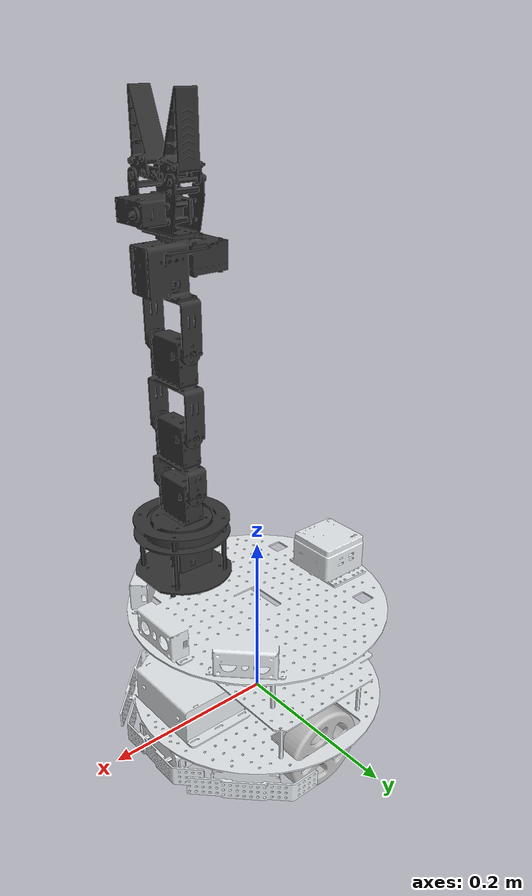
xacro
<?xml version="1.0"?>

<robot name="w2" xmlns:xacro="http://www.ros.org/wiki/xacro">

    <xacro:include filename="$(find upros_description)/xacro/w2_body.xacro" />
    <xacro:include filename="$(find upros_description)/xacro/single_arm.xacro" />
    <xacro:include filename="$(find upros_description)/xacro/diff_drive_controller.xacro" />

    <xacro:w2_body />
    <xacro:single_arm />
    <xacro:differential_drive_controller />

	<!-- 使用宏添加机械臂关节控制器 -->
	<xacro:transmission_block joint_name="joint_1"/>
	<xacro:transmission_block joint_name="joint_2"/>
	<xacro:transmission_block joint_name="joint_3"/>
	<xacro:transmission_block joint_name="joint_4"/>
	<xacro:transmission_block joint_name="joint_5"/>
	<xacro:transmission_block joint_name="claw_joint_1"/>
	<xacro:transmission_block joint_name="claw_joint_2"/>

</robot>

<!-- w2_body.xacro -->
<robot xmlns:xacro="http://www.ros.org/wiki/xacro" name="w2_body">

    <xacro:macro name="w2_body">

        <link name="base_footprint">
        </link>

        <link name="base_link">
            <inertial>
                <origin xyz="-0.00183994912012901 0.000718384784481402 0.040896257051146"
                    rpy="0 0 0" />
                <mass value="2.11446326748896" />
                <inertia ixx="0.0172522550977486" ixy="0.000112962512291742"
                    ixz="0.00215471233797688"
                    iyy="0.0214703513066925" iyz="-3.60344762320202E-05" izz="0.0232865128652866" />
            </inertial>
            <visual>
                <origin xyz="0 0 0" rpy="0 0 0" />
                <geometry>
                    <mesh filename="package://upros_description/meshes/W2C/base_link.STL" />
                </geometry>
                <material name="">
                    <color rgba="0.898039215686275 0.917647058823529 0.929411764705882 1" />
                </material>
            </visual>
            <collision>
                <origin xyz="0 0 0" rpy="0 0 0" />
                <geometry>
                    <mesh filename="package://upros_description/meshes/W2C/base_link.STL" />
                </geometry>
            </collision>
        </link>
        <joint name="base_footprint_joint" type="fixed">
            <parent link="base_footprint" />
            <child link="base_link" />
        </joint>

        <link name="wheel_L_link">
            <inertial>
                <origin xyz="-3.78770996320736E-07 -0.013414250594195 4.81266645289274E-07"
                    rpy="0 0 0" />
                <mass value="0.337836569375269" />
                <inertia ixx="0.000278270805900081" ixy="1.29138084160578E-09"
                    ixz="1.09699819030228E-09" iyy="0.000496405737651082"
                    iyz="-1.64156177606385E-09"
                    izz="0.000278271727426874" />
            </inertial>
            <visual>
                <origin xyz="0 0 0" rpy="0 0 0" />
                <geometry>
                    <mesh filename="package://upros_description/meshes/W2C/wheel_L_link.STL" />
                </geometry>
                <material name="">
                    <color rgba="0.752941176470588 0.752941176470588 0.752941176470588 1" />
                </material>
            </visual>
            <collision>
                <origin xyz="0 0 0" rpy="0 0 0" />
                <geometry>
                    <mesh filename="package://upros_description/meshes/W2C/wheel_L_link.STL" />
                </geometry>
            </collision>
        </link>
        <joint name="wheel_L_joint" type="continuous">
            <origin xyz="0 0.1215 -0.02" rpy="0 0 0" />
            <parent link="base_link" />
            <child link="wheel_L_link" />
            <axis xyz="0 1 0" />
        </joint>

        <link name="wheel_R_link">
            <inertial>
                <origin xyz="-5.54575135339762E-07 0.013414250594195 2.59868179624395E-07"
                    rpy="0 0 0" />
                <mass value="0.337836569375269" />
                <inertia ixx="0.000278271195902002" ixy="-1.89148049635397E-09"
                    ixz="1.18772924132671E-09" iyy="0.000496405737651082" iyz="8.85827903470683E-10"
                    izz="0.000278271337424954" />
            </inertial>
            <visual>
                <origin xyz="0 0 0" rpy="0 0 0" />
                <geometry>
                    <mesh filename="package://upros_description/meshes/W2C/wheel_R_link.STL" />
                </geometry>
                <material name="">
                    <color rgba="0.752941176470588 0.752941176470588 0.752941176470588 1" />
                </material>
            </visual>
            <collision>
                <origin xyz="0 0 0" rpy="0 0 0" />
                <geometry>
                    <mesh filename="package://upros_description/meshes/W2C/wheel_R_link.STL" />
                </geometry>
            </collision>
        </link>
        <joint name="wheel_R_joint" type="continuous">
            <origin xyz="0 -0.1215 -0.02" rpy="0 0 0" />
            <parent link="base_link" />
            <child link="wheel_R_link" />
            <axis xyz="0 1 0" />
        </joint>

        <link name="front_Link">
            <inertial>
                <origin xyz="0 0 0" rpy="0 0 0" />
                <mass value="0.0063074121665526" />
                <inertia ixx="3.34755925557046E-07" ixy="-1.45392467961487E-22"
                    ixz="2.42001994301979E-24" iyy="4.93530086138426E-07" iyz="6.44209161389679E-25"
                    izz="3.34755925557046E-07" />
            </inertial>
            <visual>
                <origin xyz="0 0 0" rpy="0 0 0" />
                <geometry>
                    <mesh filename="package://upros_description/meshes/W2C/wheel_B_Link.STL" />
                </geometry>
                <material name="">
                    <color rgba="0.752941176470588 1 1 1" />
                </material>
            </visual>
            <collision>
                <origin xyz="0 0 0" rpy="0 0 0" />
                <geometry>
                    <mesh filename="package://upros_description/meshes/W2C/wheel_B_Link.STL" />
                </geometry>
            </collision>
        </link>
        <joint name="front_joint" type="continuous">
            <origin xyz="0.0859999999999999 0 -0.0575" rpy="0 0 0" />
            <parent link="base_link" />
            <child link="front_Link" />
            <axis xyz="1 1 1" />
        </joint>

        <link name="back_Link">
            <inertial>
                <origin xyz="0 0 0" rpy="0 0 0" />
                <mass value="0.0063074121665526" />
                <inertia ixx="3.34755925557046E-07" ixy="-1.45392467961487E-22"
                    ixz="2.42001994301979E-24" iyy="4.93530086138426E-07" iyz="6.4420916138968E-25"
                    izz="3.34755925557046E-07" />
            </inertial>
            <visual>
                <origin xyz="0 0 0" rpy="0 0 0" />
                <geometry>
                    <mesh filename="package://upros_description/meshes/W2C/wheel_A_Link.STL" />
                </geometry>
                <material name="">
                    <color rgba="0.752941176470588 1 1 1" />
                </material>
            </visual>
            <collision>
                <origin xyz="0 0 0" rpy="0 0 0" />
                <geometry>
                    <mesh filename="package://upros_description/meshes/W2C/wheel_A_Link.STL" />
                </geometry>
            </collision>
        </link>
        <joint name="back_joint" type="continuous">
            <origin xyz="-0.0859999999999998 0 -0.0575" rpy="0 0 0" />
            <parent link="base_link" />
            <child link="back_Link" />
            <axis xyz="1 1 1" />
        </joint>

    </xacro:macro>

</robot>

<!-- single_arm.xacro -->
<robot xmlns:xacro="http://www.ros.org/wiki/xacro" name="single_arm">

  <!--定义机械臂的宏-->
  <xacro:macro name="single_arm">

    <link name="arm_base_link">
      <inertial>
        <origin xyz="-1.7947E-07 -0.0018392 0.042093" rpy="0 0 0" />
        <mass value="0.01029" />
        <inertia ixx="0.00016721" ixy="-1.4903E-10" ixz="-3.0653E-10" iyy="0.00016551"
          iyz="-2.4534E-06" izz="0.0001699" />
      </inertial>
      <visual>
        <origin xyz="0 0 0" rpy="0 0 0" />
        <geometry>
          <mesh filename="package://upros_description/meshes/arm/arm_base_link.STL" />
        </geometry>
        <material name="">
          <color rgba="0.2 0.2 0.2 1" />
        </material>
      </visual>
      <collision>
        <origin xyz="0 0 0" rpy="0 0 0" />
        <geometry>
          <mesh filename="package://upros_description/meshes/arm/arm_base_link.STL" />
        </geometry>
      </collision>
    </link>
    <joint name="arm_joint" type="fixed">
      <origin xyz="0.10 0.0 0.20" rpy="0 0 -1.57" />
      <parent link="base_link" />
      <child link="arm_base_link" />
      <axis xyz="0 0 0" />
    </joint>
    <gazebo reference="arm_base_link">
      <material>Gazebo/Gray</material>
    </gazebo>

    <link name="link_1">
      <inertial>
        <origin xyz="0.00015999 -3.7029E-07 0.0067201" rpy="0 0 0" />
        <mass value="0.018148" />
        <inertia ixx="3.0609E-05" ixy="-5.9099E-11" ixz="-1.3841E-07" iyy="3.6584E-05"
          iyz="4.9301E-10" izz="2.3547E-05" />
      </inertial>
      <visual>
        <origin xyz="0 0 0" rpy="0 0 0" />
        <geometry>
          <mesh filename="package://upros_description/meshes/arm/link_1.STL" />
        </geometry>
        <material name="">
          <color rgba="0.2 0.2 0.2 1" />
        </material>
      </visual>
      <collision>
        <origin xyz="0 0 0" rpy="0 0 0" />
        <geometry>
          <mesh filename="package://upros_description/meshes/arm/link_1.STL" />
        </geometry>
      </collision>
    </link>
    <joint name="joint_1" type="revolute">
      <origin xyz="0 0 0.072247" rpy="0 0 0" />
      <parent link="arm_base_link" />
      <child link="link_1" />
      <axis xyz="0 0 1" />
      <limit lower="-1.8" upper="1.8" effort="50" velocity="2" />
    </joint>
    <gazebo reference="link_1">
      <material>Gazebo/Gray</material>
    </gazebo>

    <link name="link_2">
      <inertial>
        <origin xyz="0.028477 -5.0821E-07 0.038913" rpy="0 0 0" />
        <mass value="0.019654" />
        <inertia ixx="1.8351E-05" ixy="-6.0792E-11" ixz="-6.4071E-08" iyy="3.1671E-05"
          iyz="3.6197E-10" izz="1.6517E-05" />
      </inertial>
      <visual>
        <origin xyz="0 0 0" rpy="0 0 0" />
        <geometry>
          <mesh filename="package://upros_description/meshes/arm/link_2.STL" />
        </geometry>
        <material name="">
          <color rgba="0.2 0.2 0.2 1" />
        </material>
      </visual>
      <collision>
        <origin xyz="0 0 0" rpy="0 0 0" />
        <geometry>
          <mesh filename="package://upros_description/meshes/arm/link_2.STL" />
        </geometry>
      </collision>
    </link>
    <joint name="joint_2" type="revolute">
      <origin xyz="-0.028151 0 0.034" rpy="0 0 0" />
      <parent link="link_1" />
      <child link="link_2" />
      <axis xyz="1 0 0" />
      <limit lower="-1.8" upper="1.8" effort="50" velocity="3" />
    </joint>
    <gazebo reference="link_2">
      <material>Gazebo/Gray</material>
    </gazebo>

    <link name="link_3">
      <inertial>
        <origin xyz="0.028363 -4.679E-07 0.054247" rpy="0 0 0" />
        <mass value="0.013931" />
        <inertia ixx="3.1912E-05" ixy="-6.0429E-11" ixz="-9.8626E-08" iyy="4.873E-05"
          iyz="4.797E-10" izz="2.0341E-05" />
      </inertial>
      <visual>
        <origin xyz="0 0 0" rpy="0 0 0" />
        <geometry>
          <mesh filename="package://upros_description/meshes/arm/link_3.STL" />
        </geometry>
        <material name="">
          <color rgba="0.2 0.2 0.2 1" />
        </material>
      </visual>
      <collision>
        <origin xyz="0 0 0" rpy="0 0 0" />
        <geometry>
          <mesh filename="package://upros_description/meshes/arm/link_3.STL" />
        </geometry>
      </collision>
    </link>
    <joint name="joint_3" type="revolute">
      <origin xyz="9.8516E-05 0 0.061" rpy="0 0 0" />
      <parent link="link_2" />
      <child link="link_3" />
      <axis xyz="1 0 0" />
      <limit lower="-1.8" upper="1.8" effort="50" velocity="3" />
    </joint>
    <gazebo reference="link_3">
      <material>Gazebo/Gray</material>
    </gazebo>

    <link name="link_4">
      <inertial>
        <origin xyz="0.028255 -0.0047504 0.06611" rpy="0 0 0" />
        <mass value="0.01537" />
        <inertia ixx="9.6221E-05" ixy="-3.6252E-10" ixz="2.7529E-08" iyy="7.3811E-05"
          iyz="7.9136E-06" izz="6.9537E-05" />
      </inertial>
      <visual>
        <origin xyz="0 0 0" rpy="0 0 0" />
        <geometry>
          <mesh filename="package://upros_description/meshes/arm/link_4.STL" />
        </geometry>
        <material name="">
          <color rgba="0.2 0.2 0.2 1" />
        </material>
      </visual>
      <collision>
        <origin xyz="0 0 0" rpy="0 0 0" />
        <geometry>
          <mesh filename="package://upros_description/meshes/arm/link_4.STL" />
        </geometry>
      </collision>
    </link>
    <joint name="joint_4" type="revolute">
      <origin xyz="0 0 0.081" rpy="0 0 0" />
      <parent link="link_3" />
      <child link="link_4" />
      <axis xyz="1 0 0" />
      <limit lower="-1.8" upper="1.8" effort="50" velocity="3" />
    </joint>
    <gazebo reference="link_4">
      <material>Gazebo/Gray</material>
    </gazebo>

    <link name="link_5">
      <inertial>
        <origin xyz="4.4212E-05 0.0041269 0.025698" rpy="0 0 0" />
        <mass value="0.018063" />
        <inertia ixx="3.7917E-05" ixy="1.4713E-07" ixz="-1.1994E-07" iyy="5.5952E-05"
          iyz="2.3438E-06" izz="5.2518E-05" />
      </inertial>
      <visual>
        <origin xyz="0 0 0" rpy="0 0 0" />
        <geometry>
          <mesh filename="package://upros_description/meshes/arm/link_5.STL" />
        </geometry>
        <material name="">
          <color rgba="0.2 0.2 0.2 1" />
        </material>
      </visual>
      <collision>
        <origin xyz="0 0 0" rpy="0 0 0" />
        <geometry>
          <mesh filename="package://upros_description/meshes/arm/link_5.STL" />
        </geometry>
      </collision>
    </link>
    <joint name="joint_5" type="revolute">
      <origin xyz="0.02825 0 0.0975" rpy="0 0 0" />
      <parent link="link_4" />
      <child link="link_5" />
      <axis xyz="0 0 -1" />
      <limit lower="-1.8" upper="1.8" effort="50" velocity="3" />
    </joint>
    <gazebo reference="link_5">
      <material>Gazebo/Gray</material>
    </gazebo>

    <link name="claw_link_1">
      <inertial>
        <origin xyz="0.0054256 -0.015308 0.019147" rpy="0 0 0" />
        <mass value="0.018231" />
        <inertia ixx="6.9914E-06" ixy="-3.7017E-08" ixz="1.3043E-06" iyy="6.7797E-06"
          iyz="4.9174E-08" izz="2.5386E-06" />
      </inertial>
      <visual>
        <origin xyz="0 0 0" rpy="0 0 0" />
        <geometry>
          <mesh filename="package://upros_description/meshes/arm/claw_link_1.STL" />
        </geometry>
        <material name="">
          <color rgba="0.2 0.2 0.2 1" />
        </material>
      </visual>
      <collision>
        <origin xyz="0 0 0" rpy="0 0 0" />
        <geometry>
          <mesh filename="package://upros_description/meshes/arm/claw_link_1.STL" />
        </geometry>
      </collision>
    </link>
    <joint name="claw_joint_1" type="revolute">
      <origin xyz="-0.028 0.015 0.0462" rpy="0 0 0" />
      <parent link="link_5" />
      <child link="claw_link_1" />
      <axis xyz="0 -1 0" />
      <limit lower="-1.5" upper="1.5" effort="10" velocity="3" />
    </joint>
    <gazebo reference="claw_link_1">
      <material>Gazebo/Gray</material>
    </gazebo>

    <link name="claw_link_2">
      <inertial>
        <origin xyz="-0.0054256 -0.015308 0.019147" rpy="0 0 0" />
        <mass value="0.018231" />
        <inertia ixx="6.9914E-06" ixy="3.7016E-08" ixz="-1.3043E-06" iyy="6.7797E-06"
          iyz="4.9173E-08" izz="2.5386E-06" />
      </inertial>
      <visual>
        <origin xyz="0 0 0" rpy="0 0 0" />
        <geometry>
          <mesh filename="package://upros_description/meshes/arm/claw_link_2.STL" />
        </geometry>
        <material name="">
          <color rgba="0.2 0.2 0.2 1" />
        </material>
      </visual>
      <collision>
        <origin xyz="0 0 0" rpy="0 0 0" />
        <geometry>
          <mesh filename="package://upros_description/meshes/arm/claw_link_2.STL" />
        </geometry>
      </collision>
    </link>
    <joint name="claw_joint_2" type="revolute">
      <origin xyz="0.027609 0.015 0.0462" rpy="0 0 0" />
      <parent link="link_5" />
      <child link="claw_link_2" />
      <axis xyz="0 -1 0" />
      <limit lower="-1.5" upper="1.5" effort="10" velocity="3" />
    </joint>
    <gazebo reference="claw_link_2">
      <material>Gazebo/Gray</material>
    </gazebo>

    <!-- ros_control plugin -->
    <gazebo>
      <plugin name="gazebo_ros_control" filename="libgazebo_ros_control.so">
        <robotNamespace>/</robotNamespace>
        <robotSimType>gazebo_ros_control/DefaultRobotHWSim</robotSimType>
        <legacyModeNS>true</legacyModeNS>
      </plugin>
    </gazebo>

  </xacro:macro>

  <!-- Transmissions for ROS Control -->
  <xacro:macro name="transmission_block" params="joint_name">
    <transmission name="tran1">
      <type>transmission_interface/SimpleTransmission</type>
      <joint name="${joint_name}">
        <hardwareInterface>hardware_interface/PositionJointInterface</hardwareInterface>
      </joint>
      <actuator name="motor1">
        <hardwareInterface>hardware_interface/PositionJointInterface</hardwareInterface>
        <mechanicalReduction>1</mechanicalReduction>
      </actuator>
    </transmission>
  </xacro:macro>

</robot>
